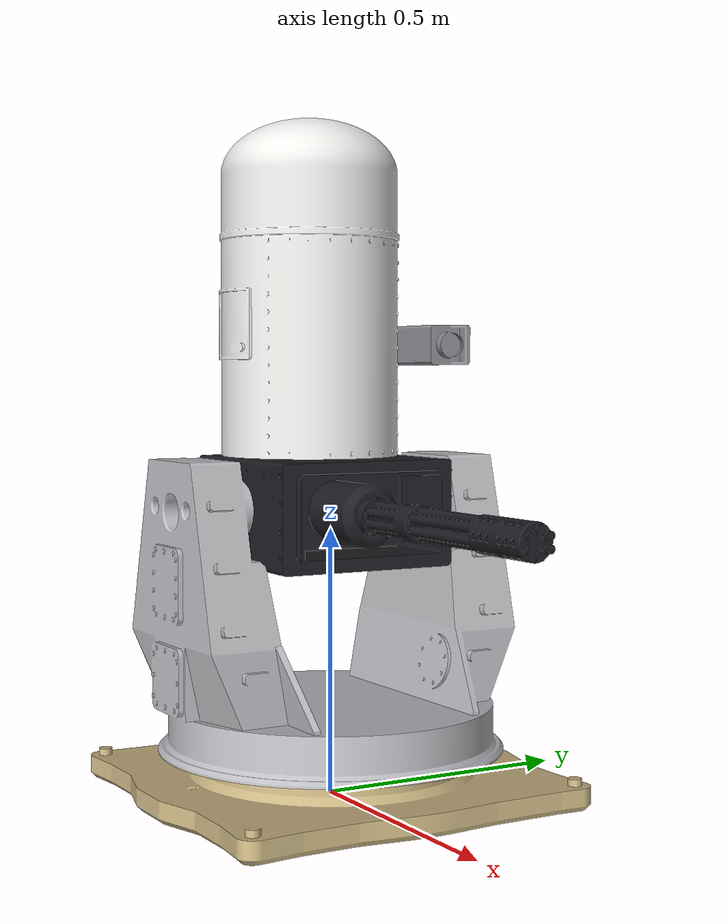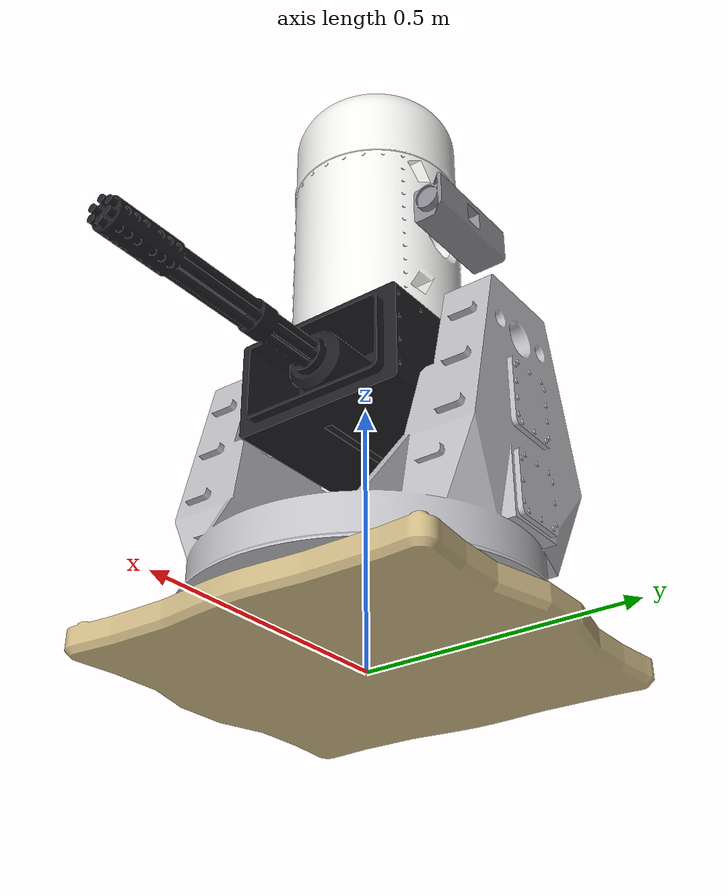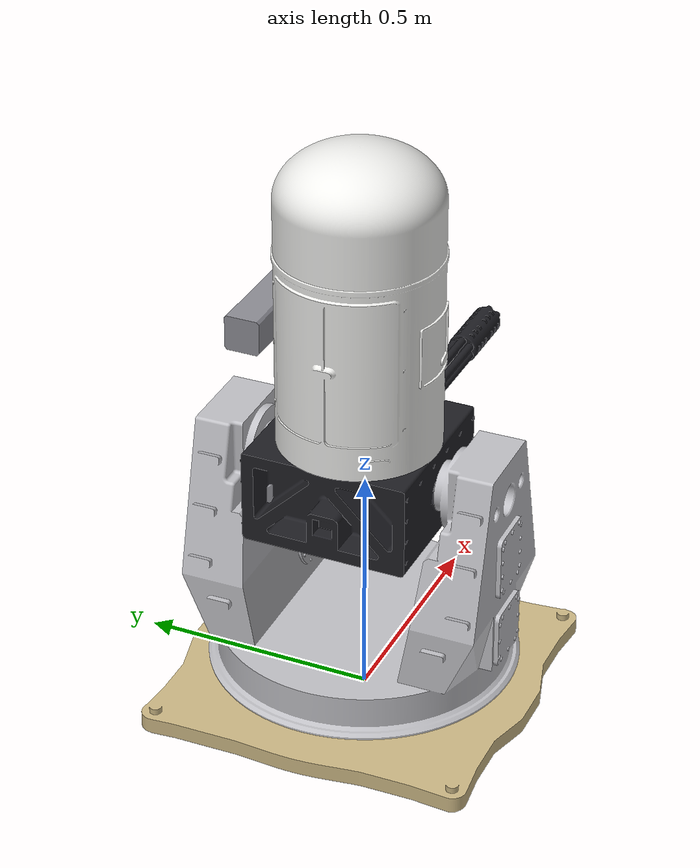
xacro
<?xml version="1.0"?>
<robot xmlns:xacro="http://www.ros.org/wiki/xacro" name="ciws_turret">

  <!-- 조준 카메라 해상도(정사각). 기본 640. 320 으로 낮추면 FCS 처리율이 오르는 대신
       먼 표적의 화소 수가 줄어든다 — docs/sessions/session_work_summary_2026-09-12.md 5절. -->
  <xacro:arg name="camera_px" default="640"/>
  <!-- 조준 카메라 수평 화각(rad). 기본 0.4(약 23도). 좁히면 배율을 높인 것과 같다. -->
  <xacro:arg name="camera_hfov" default="0.4"/>
  <!-- 진단/35 m 시험에서 유효 반사를 주지 못하는 GPU LiDAR를 끌 수 있다. -->
  <xacro:arg name="enable_lidar" default="true"/>
  <xacro:property name="mesh" value="package://ciws_turret/meshes"/>
  <xacro:property name="base_top" value="0.0885"/>
  <xacro:property name="PI" value="3.14159265359"/>
  <!-- trunnion (elevation pivot) in the turret(pan) frame -->
  <xacro:property name="piv_x" value="-0.024"/>
  <xacro:property name="piv_z" value="0.4565"/>

  <material name="tan"><color rgba="0.80 0.72 0.52 1.0"/></material>
  <material name="lgrey"><color rgba="0.75 0.75 0.77 1.0"/></material>
  <material name="mgrey"><color rgba="0.55 0.55 0.58 1.0"/></material>
  <material name="white"><color rgba="0.93 0.93 0.92 1.0"/></material>
  <material name="black"><color rgba="0.12 0.12 0.14 1.0"/></material>

  <xacro:macro name="box_inertia" params="m x y z">
    <inertial><mass value="${m}"/>
      <inertia ixx="${m*(y*y+z*z)/12.0}" ixy="0" ixz="0"
               iyy="${m*(x*x+z*z)/12.0}" iyz="0" izz="${m*(x*x+y*y)/12.0}"/></inertial>
  </xacro:macro>

  <link name="world"/>
  <joint name="world_joint" type="fixed"><parent link="world"/><child link="base_footprint"/>
    <origin xyz="0 0 0"/></joint>
  <link name="base_footprint"/>
  <joint name="base_joint" type="fixed"><parent link="base_footprint"/><child link="base_link"/>
    <origin xyz="0 0 0"/></joint>
  <link name="base_link">
    <visual><geometry><mesh filename="${mesh}/base.stl"/></geometry><material name="tan"/></visual>
    <collision><origin xyz="0 0 ${base_top/2}"/><geometry><box size="0.72 0.75 ${base_top}"/></geometry></collision>
    <inertial><origin xyz="0 0 ${base_top/2}"/><mass value="6.0"/>
      <inertia ixx="0.30" ixy="0" ixz="0" iyy="0.30" iyz="0" izz="0.55"/></inertial>
  </link>

  <!-- ===================== TURRET: PAN (azimuth, continuous) ===================== -->
  <joint name="turret_pan_joint" type="continuous">
    <parent link="base_link"/><child link="turret_link"/>
    <origin xyz="0 0 ${base_top}"/><axis xyz="0 0 1"/>
    <limit effort="40.0" velocity="3.0"/><dynamics damping="0.3" friction="0.1"/>
  </joint>
  <link name="turret_link">
    <visual><geometry><mesh filename="${mesh}/turret.stl"/></geometry><material name="lgrey"/></visual>
    <collision><origin xyz="0 0 0.27"/><geometry><cylinder radius="0.28" length="0.52"/></geometry></collision>
    <inertial><origin xyz="0 0 0.22"/><mass value="4.0"/>
      <inertia ixx="0.22" ixy="0" ixz="0" iyy="0.22" iyz="0" izz="0.18"/></inertial>
  </link>

  <!-- ===================== ELEVATION ASSEMBLY (tilts about trunnion Y) ===================== -->
  <!-- The gun link carries the elevation joint; radome, rod, camera are fixed to it. -->
  <joint name="turret_tilt_joint" type="revolute">
    <parent link="turret_link"/><child link="gun_link"/>
    <origin xyz="${piv_x - 0.03785} 0 ${piv_z + 0.05}"/><axis xyz="0 -1 0"/>
    <limit lower="${0.0*PI/180.0}" upper="${85.0*PI/180.0}" effort="25.0" velocity="2.5"/>
    <dynamics damping="0.4" friction="0.1"/>
  </joint>
  <link name="gun_link">
    <visual><geometry><mesh filename="${mesh}/gun.stl"/></geometry><material name="black"/></visual>
    <collision><origin xyz="0.293 0 -0.042"/><geometry><box size="0.876 0.358 0.234"/></geometry></collision>
    <xacro:box_inertia m="3.0" x="0.876" y="0.358" z="0.234"/>
  </link>

  <!-- radar dome (big white cylinder) -->
  <joint name="radome_joint" type="fixed"><parent link="gun_link"/><child link="radome_link"/>
    <origin xyz="0 0.25 0.4575" rpy="${PI/2} -${PI/2} 0"/></joint>
  <link name="radome_link">
    <visual><geometry><mesh filename="${mesh}/radome.stl"/></geometry><material name="white"/></visual>
    <collision><origin xyz="-0.10 0 0.265" rpy="0 ${PI/2} 0"/>
      <geometry><cylinder radius="0.170" length="0.60"/></geometry></collision>
    <xacro:box_inertia m="2.0" x="0.63" y="0.35" z="0.35"/>
  </link>

  <!-- trunnion truss (grey), tilts with the assembly -->
  <joint name="rod_joint" type="fixed"><parent link="gun_link"/><child link="rod_link"/>
    <origin xyz="0 0 0"/></joint>
  <link name="rod_link">
    <visual><geometry><mesh filename="${mesh}/rod.stl"/></geometry><material name="mgrey"/></visual>
    <collision><geometry><box size="0.17 0.325 0.235"/></geometry></collision>
    <xacro:box_inertia m="1.0" x="0.17" y="0.325" z="0.235"/>
  </link>

  <joint name="camera_joint" type="fixed"><parent link="gun_link"/><child link="camera_link"/>
    <origin xyz="-0.07 0.05 0.15"/></joint>
  <link name="camera_link">
    <visual><geometry><mesh filename="${mesh}/camera.stl"/></geometry><material name="mgrey"/></visual>
    <collision><origin xyz="0.12 0.16 0.10"/><geometry><box size="0.218 0.075 0.075"/></geometry></collision>
    <inertial><origin xyz="0.12 0.16 0.10"/><mass value="0.1"/>
      <inertia ixx="1e-4" ixy="0" ixz="0" iyy="1e-4" iyz="0" izz="1e-4"/></inertial>
  </link>
  <joint name="camera_optical_joint" type="fixed"><parent link="camera_link"/><child link="camera_link_optical"/>
    <origin xyz="0.229 -0.05 0.10" rpy="0 0 0"/></joint>
  <link name="camera_link_optical"/>

  <gazebo reference="camera_link">
    <sensor name="turret_camera" type="camera">
      <pose>0.229 -0.05 0.10 0 0 0</pose>
      <always_on>1</always_on><update_rate>30</update_rate><visualize>true</visualize>
      <topic>/turret_camera/image_raw</topic><gz_frame_id>camera_link_optical</gz_frame_id>
      <camera><horizontal_fov>$(arg camera_hfov)</horizontal_fov>
        <image><width>$(arg camera_px)</width><height>$(arg camera_px)</height><format>R8G8B8</format></image>
        <clip><near>0.05</near><far>500.0</far></clip></camera>
    </sensor>

    <xacro:if value="$(arg enable_lidar)">
    <sensor name="turret_boresight_laser" type="gpu_lidar">
      <pose>0.229 -0.05 0.10 0 0 0</pose>
      <always_on>1</always_on><update_rate>30</update_rate><visualize>false</visualize>
      <topic>/turret_camera/boresight_range</topic><gz_frame_id>camera_link_optical</gz_frame_id>
      <lidar>
        <scan>
          <horizontal>
            <samples>33</samples><resolution>1</resolution>
            <min_angle>-0.04</min_angle><max_angle>0.04</max_angle>
          </horizontal>
          <vertical>
            <samples>33</samples><resolution>1</resolution>
            <min_angle>-0.04</min_angle><max_angle>0.04</max_angle>
          </vertical>
        </scan>
        <range><min>1.0</min><max>500.0</max><resolution>0.01</resolution></range>
        <noise><type>gaussian</type><mean>0.0</mean><stddev>0.02</stddev></noise>
      </lidar>
    </sensor>
    </xacro:if>
  </gazebo>

  <!-- ===================== Gazebo colours ===================== -->
  <gazebo reference="base_link"><visual><material><ambient>0.80 0.72 0.52 1</ambient><diffuse>0.82 0.74 0.54 1</diffuse></material></visual></gazebo>
  <gazebo reference="turret_link"><visual><material><ambient>0.75 0.75 0.77 1</ambient><diffuse>0.75 0.75 0.77 1</diffuse></material></visual></gazebo>
  <gazebo reference="gun_link"><gravity>false</gravity><visual><material><ambient>0.12 0.12 0.14 1</ambient><diffuse>0.12 0.12 0.14 1</diffuse></material></visual></gazebo>
  <gazebo reference="radome_link"><gravity>false</gravity><visual><material><ambient>0.90 0.90 0.90 1</ambient><diffuse>0.95 0.95 0.94 1</diffuse></material></visual></gazebo>
  <gazebo reference="rod_link"><gravity>false</gravity><visual><material><ambient>0.55 0.55 0.58 1</ambient><diffuse>0.55 0.55 0.58 1</diffuse></material></visual></gazebo>
  <gazebo reference="camera_link"><gravity>false</gravity><visual><material><ambient>0.50 0.50 0.52 1</ambient><diffuse>0.50 0.50 0.52 1</diffuse></material></visual></gazebo>

  <!-- ===================== ros2_control ===================== -->
  <ros2_control name="GazeboSimSystem" type="system">
    <hardware>
      <plugin>gz_ros2_control/GazeboSimSystem</plugin>
      <param name="position_proportional_gain">100.0</param>
    </hardware>
    <joint name="turret_pan_joint">
      <command_interface name="position"/><state_interface name="position"/><state_interface name="velocity"/>
    </joint>
    <joint name="turret_tilt_joint">
      <command_interface name="position">
        <param name="min">${0.0*PI/180.0}</param><param name="max">${85.0*PI/180.0}</param></command_interface>
      <state_interface name="position"/><state_interface name="velocity"/>
    </joint>
  </ros2_control>
  <gazebo>
    <plugin filename="gz_ros2_control-system" name="gz_ros2_control::GazeboSimROS2ControlPlugin">
      <parameters>$(find ciws_turret)/config/controllers.yaml</parameters>
    </plugin>
  </gazebo>

</robot>
